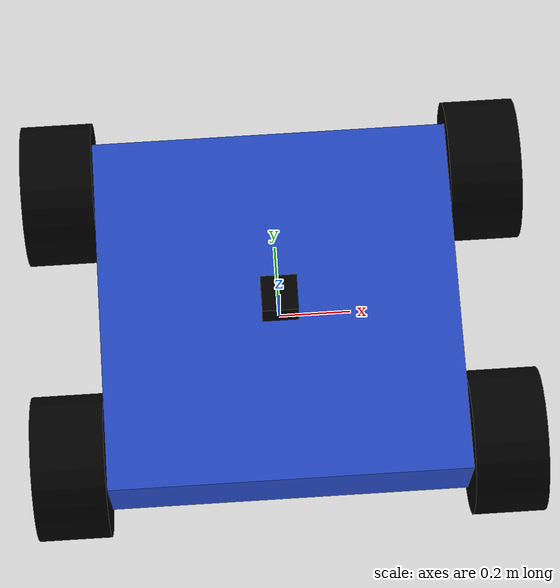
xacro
<?xml version="1.0"?>
<robot xmlns:xacro="http://www.ros.org/wiki/xacro" name="my_robot">

  <xacro:property name="length" value="1" />
  <xacro:property name="width" value="1" />
  <xacro:property name="height" value="0.5" />
  <xacro:property name="length_wheel" value="0.2" />
  <xacro:property name="radius_wheel" value="0.2" />

  <xacro:macro name="default_inertial" params="mass">
    <inertial>
      <origin rpy="0.0 0 0" xyz="0 0 0"/>
      <mass value="${mass}" />
      <inertia ixx="0.0" ixy="0.0" ixz="0.0" iyy="1.0" iyz="0.0" izz="0.0" />
    </inertial>
  </xacro:macro>

<link name="base_footprint">
  <visual>
    <origin rpy="0 0 0" xyz="0 0 0"/>
    <geometry>
      <box size="0 0 0"/>
    </geometry>
  </visual>
  <collision>
    <origin rpy="0 0 0" xyz="0 0 0"/>
    <geometry>
      <box size="0 0 0"/>
    </geometry>
  </collision>
  <xacro:default_inertial mass="0.1"/>
</link>

  <link name="base_link">
    <visual>
      <origin rpy="0 0 0" xyz="0 0 0"/>
      <geometry>
        <box size="${length} ${width} ${height/2}"/>
      </geometry>
    </visual>
    <collision>
      <origin rpy="0 0 0" xyz="0 0 0"/>
      <geometry>
        <box size="${length} ${width} ${height/2}"/>
      </geometry>
    </collision>
    <xacro:default_inertial mass="10"/>
  </link>

  <link name="wheel_1">
    <visual>
            <geometry>
                <cylinder length="${length_wheel}" radius="${radius_wheel}"/>
            </geometry>
        <origin rpy="0 0 0" xyz="0 0 0"/>
        <material name="black">
            <color rgba="0 0 0 1"/>
        </material>
    </visual>
    <collision>
        <geometry>
                <cylinder length="${length_wheel}" radius="${radius_wheel}"/>
        </geometry>
    </collision>
    <xacro:default_inertial mass="3"/>
</link>

<link name="wheel_2">
  <visual>
          <geometry>
              <cylinder length="${length_wheel}" radius="${radius_wheel}"/>
          </geometry>
      <origin rpy="0 0 0" xyz="0 0 0"/>
      <material name="black">
          <color rgba="0 0 0 1"/>
      </material>
  </visual>
  <collision>
      <geometry>
              <cylinder length="${length_wheel}" radius="${radius_wheel}"/>
      </geometry>
  </collision>
  <xacro:default_inertial mass="3"/>
</link>

<link name="wheel_3">
  <visual>
          <geometry>
              <cylinder length="${length_wheel}" radius="${radius_wheel}"/>
          </geometry>
      <origin rpy="0 0 0" xyz="0 0 0"/>
      <material name="black">
          <color rgba="0 0 0 1"/>
      </material>
  </visual>
  <collision>
      <geometry>
              <cylinder length="${length_wheel}" radius="${radius_wheel}"/>
      </geometry>
  </collision>
  <xacro:default_inertial mass="3"/>
</link>

<link name="wheel_4">
  <visual>
          <geometry>
              <cylinder length="${length_wheel}" radius="${radius_wheel}"/>
          </geometry>
      <origin rpy="0 0 0" xyz="0 0 0"/>
      <material name="black">
          <color rgba="0 0 0 1"/>
      </material>
  </visual>
  <collision>
      <geometry>
              <cylinder length="${length_wheel}" radius="${radius_wheel}"/>
      </geometry>
  </collision>
  <xacro:default_inertial mass="3"/>
</link>

<link name="imu_link">
  <visual>
    <geometry>
      <box size="0.1 0.1 0.1"/>
    </geometry>
    <origin rpy="0 0 0" xyz="0 0 0"/>
    <material name="black">
          <color rgba="0 0 0 1"/>
    </material>
  </visual>
  <collision>
    <geometry>
      <box size="0.1 0.1 0.1"/>
    </geometry>
  </collision>
  <xacro:default_inertial mass="0.1"/>
</link>

  <joint name="my_robot_base" type="prismatic">
    <origin rpy="0 0 0" xyz="0 0 0"/>
    <parent link="base_footprint"/>
    <child link="base_link"/>
    <axis xyz="0 1 0"/>
    <dynamics damping="1" friction="1"/>
    <limit effort="10000" lower="-50.0" upper="600.0" velocity="0.1"/>
  </joint>

  <joint name="base_to_wheel1" type="continuous">
    <parent link="base_link"/>
    <child link="wheel_1"/>
    <origin rpy="0 -1.5707 0" xyz="0.6 0.4 0"/>
    <axis xyz="0 0 1" />
  </joint>

  <joint name="base_to_wheel2" type="continuous">
    <parent link="base_link"/>
    <child link="wheel_2"/>
    <origin rpy="0 -1.5707 0" xyz="-0.6 0.4 0"/>
    <axis xyz="0 0 1" />
  </joint>

  <joint name="base_to_wheel3" type="continuous">
    <parent link="base_link"/>
    <child link="wheel_3"/>
    <origin rpy="0 -1.5707 0" xyz="0.6 -0.4 0"/>
    <axis xyz="0 0 1" />
  </joint>

  <joint name="base_to_wheel4" type="continuous">
    <parent link="base_link"/>
    <child link="wheel_4"/>
    <origin rpy="0 -1.5707 0" xyz="-0.6 -0.4 0"/>
    <axis xyz="0 0 1" />
  </joint>

  <joint name="base_to_imu" type="continuous">
    <parent link="base_link"/>
    <child link="imu_link"/>
    <origin rpy="0.0 0.0 0.0" xyz="0.0 0.0 0.175"/>
    <axis xyz="0 0 1" />
  </joint>

  <transmission name="tran2">
    <type>transmission_interface/SimpleTransmission</type>
    <joint name="my_robot_base">
      <hardwareInterface>EffortJointInterface</hardwareInterface>
    </joint>
    <actuator name="motor2">
      <hardwareInterface>EffortJointInterface</hardwareInterface>
      <mechanicalReduction>1</mechanicalReduction>
    </actuator>
  </transmission>

  <transmission name="transmission_wheel_1">
    <type>transmission_interface/SimpleTransmission</type>
    <joint name="base_to_wheel1">
        <hardwareInterface>hardware_interface/EffortJointInterface</hardwareInterface>
    </joint>
    <actuator name="motor_wheel_1">
        <hardwareInterface>hardware_interface/EffortJointInterface</hardwareInterface>
        <mechanicalReduction>1</mechanicalReduction>
    </actuator>
</transmission>

<transmission name="transmission_wheel_2">
  <type>transmission_interface/SimpleTransmission</type>
  <joint name="base_to_wheel2">
      <hardwareInterface>hardware_interface/EffortJointInterface</hardwareInterface>
  </joint>
  <actuator name="motor_wheel_2">
      <hardwareInterface>hardware_interface/EffortJointInterface</hardwareInterface>
      <mechanicalReduction>1</mechanicalReduction>
  </actuator>
</transmission>

<gazebo reference="base_link">
    <material>Gazebo/Blue</material>
    <gravity>1</gravity>
</gazebo>

<gazebo reference="wheel_1">
    <material>Gazebo/Black</material>
</gazebo>

<gazebo reference="wheel_2">
    <material>Gazebo/Black</material>
</gazebo>

<gazebo reference="wheel_3">
    <material>Gazebo/Black</material>
</gazebo>

<gazebo reference="wheel_4">
    <material>Gazebo/Black</material>
</gazebo>
  <!-- Gazebo plugin for ROS Control -->
  <gazebo>
    <plugin name="gazebo_ros_control" filename="libgazebo_ros_control.so">
      <robotNamespace>/my_robot</robotNamespace>
    </plugin>
  </gazebo>

  <!-- Gazebo plugin for IMU-->
  <gazebo reference="imu_link">
    <material>Gazebo/Black</material>
    <gravity>true</gravity>
    <sensor name="imu_sensor" type="imu">
      <always_on>true</always_on>
      <update_rate>100</update_rate>
      <visualize>true</visualize>
      <topic>__default_topic__</topic>
      <plugin filename="libgazebo_ros_imu_sensor.so" name="imu_plugin">
        <topicName>imu</topicName>
        <bodyName>imu_link</bodyName>
        <updateRateHZ>10.0</updateRateHZ>
        <gaussianNoise>0.0</gaussianNoise>
        <xyzOffset>0 0 0</xyzOffset>
        <rpyOffset>0 0 0</rpyOffset>
        <frameName>imu_link</frameName>
        <initialOrientationAsReference>false</initialOrientationAsReference>
      </plugin>
      <pose>0 0 0 0 0 0</pose>
    </sensor>
  </gazebo>
</robot>
